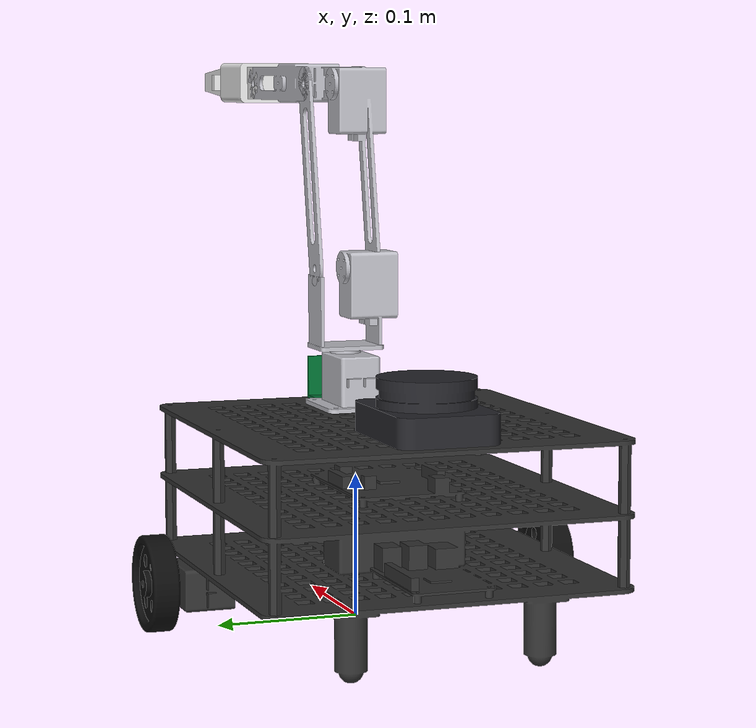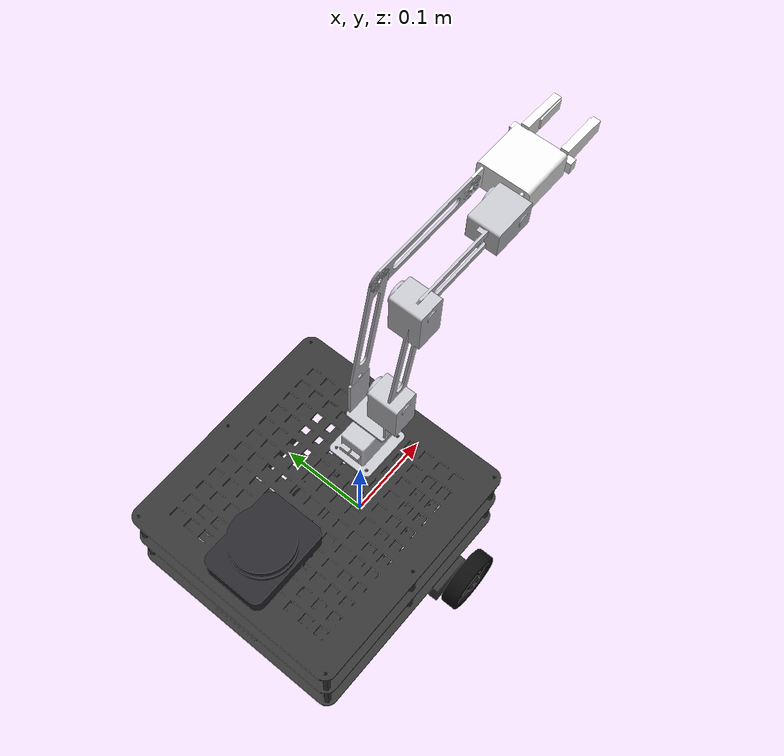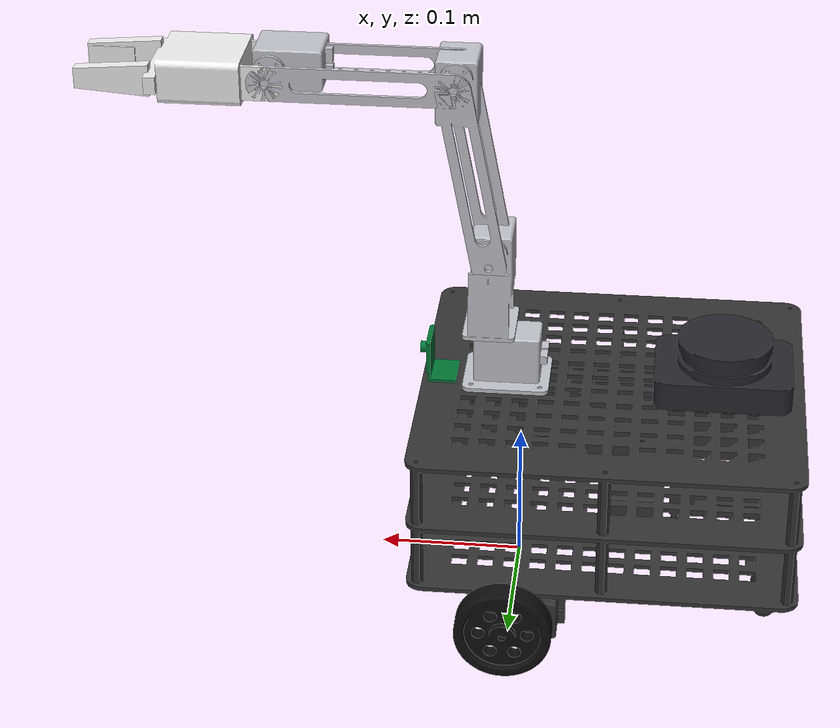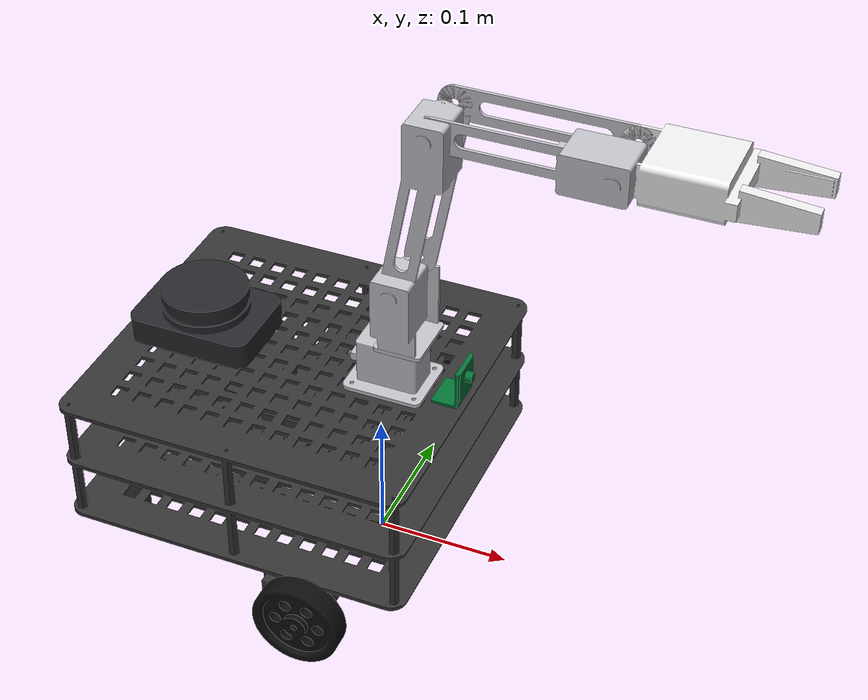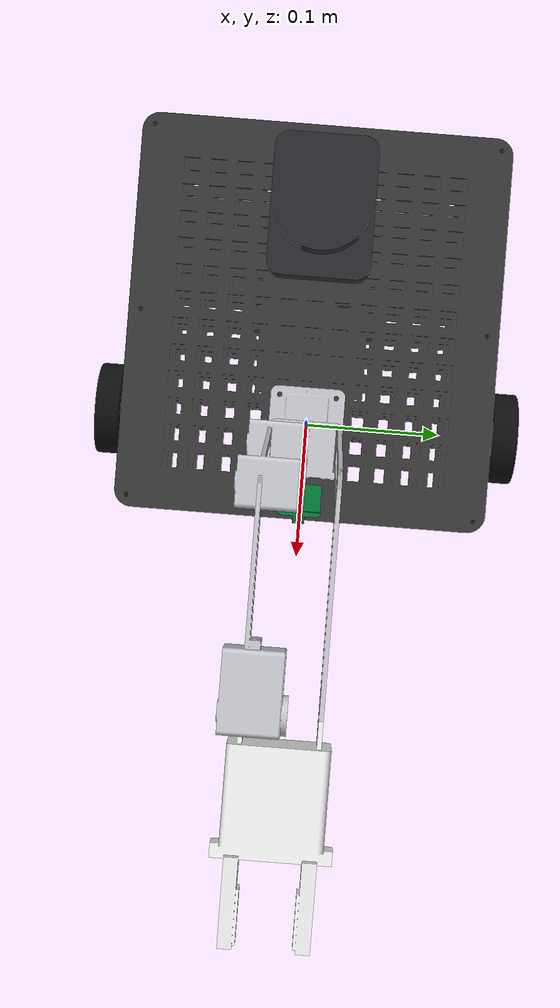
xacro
<?xml version="1.0"?>
<!-- TurtleBot3 Waffle Pi + OpenMANIPULATOR-X  |  generated by source/generate.py -->
<robot name="tb3_omx" xmlns:xacro="http://www.ros.org/wiki/xacro">
  <xacro:arg name="use_gazebo" default="false"/>
  <!-- ===== Parameters ===== -->
  <xacro:property name="j1_lower" value="-2.82743"/>
  <xacro:property name="j1_upper" value="2.82743"/>
  <xacro:property name="j2_lower" value="-1.79071"/>
  <xacro:property name="j2_upper" value="1.5708"/>
  <xacro:property name="j3_lower" value="-0.942478"/>
  <xacro:property name="j3_upper" value="1.3823"/>
  <xacro:property name="j4_lower" value="-1.79071"/>
  <xacro:property name="j4_upper" value="2.04204"/>
  <xacro:property name="grip_lower" value="-0.01"/>
  <xacro:property name="grip_upper" value="0.019"/>
  <xacro:property name="arm_effort" value="1"/>
  <xacro:property name="arm_velocity" value="4.8"/>
  <xacro:property name="wheel_radius" value="0.033"/>
  <xacro:property name="wheel_width" value="0.018"/>
  <xacro:property name="wheel_separation" value="0.288"/>
  <xacro:property name="mesh_path" value="package://tb3_omx_description/meshes"/>
  <material name="dark_grey"><color rgba="0.2 0.2 0.2 1"/></material>
  <material name="black"><color rgba="0.05 0.05 0.05 1"/></material>
  <material name="dark"><color rgba="0.15 0.15 0.17 1"/></material>
  <material name="green"><color rgba="0.0 0.45 0.2 1"/></material>
  <material name="aluminium"><color rgba="0.75 0.75 0.78 1"/></material>
  <material name="white"><color rgba="0.92 0.92 0.92 1"/></material>
  <link name="base_footprint"/>
  <link name="imu_link"/>
  <link name="end_effector_link"/>
  <link name="caster_back_left_link">
    <collision><geometry><sphere radius="0.008"/></geometry></collision>
    <inertial><mass value="0.005"/><inertia ixx="1e-6" ixy="0" ixz="0" iyy="1e-6" iyz="0" izz="1e-6"/></inertial>
  </link>
  <link name="caster_back_right_link">
    <collision><geometry><sphere radius="0.008"/></geometry></collision>
    <inertial><mass value="0.005"/><inertia ixx="1e-6" ixy="0" ixz="0" iyy="1e-6" iyz="0" izz="1e-6"/></inertial>
  </link>
  <link name="base_link">
    <visual>
      <origin xyz="0 0 0" rpy="0 0 0"/>
      <geometry><mesh filename="${mesh_path}/base_link.stl" scale="0.001 0.001 0.001"/></geometry>
      <material name="dark_grey"/>
    </visual>
    <collision>
      <origin xyz="-0.064 0 0.08275" rpy="0 0 0"/>
      <geometry><box size="0.266 0.25 0.107"/></geometry>
    </collision>
    <inertial>
      <origin xyz="-0.0664042 2.92852e-05 0.0707364" rpy="0 0 0"/>
      <mass value="1.6"/>
      <inertia ixx="1.228055e-02" ixy="5.002345e-06" ixz="-3.430103e-05" iyy="1.150243e-02" iyz="1.831477e-06" izz="1.847985e-02"/>
    </inertial>
  </link>
  <link name="wheel_left_link">
    <visual>
      <origin xyz="0 0 0" rpy="0 0 0"/>
      <geometry><mesh filename="${mesh_path}/wheel_left_link.stl" scale="0.001 0.001 0.001"/></geometry>
      <material name="black"/>
    </visual>
    <collision>
      <origin xyz="0 0 0" rpy="0 0 0"/>
      <geometry><cylinder radius="${wheel_radius}" length="${wheel_width}"/></geometry>
    </collision>
    <inertial>
      <origin xyz="0 0 0" rpy="0 0 0"/>
      <mass value="0.0285"/>
      <inertia ixx="9.462499e-06" ixy="9.164671e-22" ixz="-4.241032e-23" iyy="9.462499e-06" iyz="1.471676e-23" izz="1.780869e-05"/>
    </inertial>
  </link>
  <link name="wheel_right_link">
    <visual>
      <origin xyz="0 0 0" rpy="0 0 0"/>
      <geometry><mesh filename="${mesh_path}/wheel_right_link.stl" scale="0.001 0.001 0.001"/></geometry>
      <material name="black"/>
    </visual>
    <collision>
      <origin xyz="0 0 0" rpy="0 0 0"/>
      <geometry><cylinder radius="${wheel_radius}" length="${wheel_width}"/></geometry>
    </collision>
    <inertial>
      <origin xyz="0 0 0" rpy="0 0 0"/>
      <mass value="0.0285"/>
      <inertia ixx="9.462499e-06" ixy="9.164671e-22" ixz="-4.241032e-23" iyy="9.462499e-06" iyz="1.471676e-23" izz="1.780869e-05"/>
    </inertial>
  </link>
  <link name="base_scan">
    <visual>
      <origin xyz="0 0 0" rpy="0 0 0"/>
      <geometry><mesh filename="${mesh_path}/base_scan.stl" scale="0.001 0.001 0.001"/></geometry>
      <material name="dark"/>
    </visual>
    <collision>
      <origin xyz="0 0 0" rpy="0 0 0"/>
      <geometry><mesh filename="${mesh_path}/base_scan.stl" scale="0.001 0.001 0.001"/></geometry>
    </collision>
    <inertial>
      <origin xyz="0 0 -0.0135566" rpy="0 0 0"/>
      <mass value="0.114"/>
      <inertia ixx="5.347521e-05" ixy="3.513103e-22" ixz="1.231216e-21" iyy="8.029145e-05" iyz="8.523986e-23" izz="1.066196e-04"/>
    </inertial>
  </link>
  <link name="camera_link">
    <visual>
      <origin xyz="0 0 0" rpy="0 0 0"/>
      <geometry><mesh filename="${mesh_path}/camera_link.stl" scale="0.001 0.001 0.001"/></geometry>
      <material name="green"/>
    </visual>
    <collision>
      <origin xyz="0 0 0" rpy="0 0 0"/>
      <geometry><mesh filename="${mesh_path}/camera_link.stl" scale="0.001 0.001 0.001"/></geometry>
    </collision>
    <inertial>
      <origin xyz="-0.00427417 0 -0.00812358" rpy="0 0 0"/>
      <mass value="0.035"/>
      <inertia ixx="5.327454e-06" ixy="3.557610e-23" ixz="-1.229516e-06" iyy="4.431648e-06" iyz="3.727679e-23" izz="3.215425e-06"/>
    </inertial>
  </link>
  <link name="link1">
    <visual>
      <origin xyz="0 0 0" rpy="0 0 0"/>
      <geometry><mesh filename="${mesh_path}/link1.stl" scale="0.001 0.001 0.001"/></geometry>
      <material name="aluminium"/>
    </visual>
    <collision>
      <origin xyz="0 0 0" rpy="0 0 0"/>
      <geometry><mesh filename="${mesh_path}/link1.stl" scale="0.001 0.001 0.001"/></geometry>
    </collision>
    <inertial>
      <origin xyz="-1.95566e-05 0 -0.00263376" rpy="0 0 0"/>
      <mass value="0.0794"/>
      <inertia ixx="1.751067e-05" ixy="-3.916690e-23" ixz="-3.056049e-07" iyy="2.657503e-05" iyz="1.631697e-21" izz="2.300670e-05"/>
    </inertial>
  </link>
  <link name="link2">
    <visual>
      <origin xyz="0 0 0" rpy="0 0 0"/>
      <geometry><mesh filename="${mesh_path}/link2.stl" scale="0.001 0.001 0.001"/></geometry>
      <material name="aluminium"/>
    </visual>
    <collision>
      <origin xyz="0 0 0" rpy="0 0 0"/>
      <geometry><mesh filename="${mesh_path}/link2.stl" scale="0.001 0.001 0.001"/></geometry>
    </collision>
    <inertial>
      <origin xyz="0 -0.013286 0.0418309" rpy="0 0 0"/>
      <mass value="0.0985"/>
      <inertia ixx="5.143864e-05" ixy="9.209884e-22" ixz="4.937743e-21" iyy="3.929422e-05" iyz="7.022852e-06" izz="2.579167e-05"/>
    </inertial>
  </link>
  <link name="link3">
    <visual>
      <origin xyz="0 0 0" rpy="0 0 0"/>
      <geometry><mesh filename="${mesh_path}/link3.stl" scale="0.001 0.001 0.001"/></geometry>
      <material name="aluminium"/>
    </visual>
    <collision>
      <origin xyz="0 0 0" rpy="0 0 0"/>
      <geometry><mesh filename="${mesh_path}/link3.stl" scale="0.001 0.001 0.001"/></geometry>
    </collision>
    <inertial>
      <origin xyz="0.0214607 -0.0131109 0.104978" rpy="0 0 0"/>
      <mass value="0.1385"/>
      <inertia ixx="1.773126e-04" ixy="4.611043e-06" ixz="-2.607554e-05" iyy="1.611754e-04" iyz="1.946478e-05" izz="4.520910e-05"/>
    </inertial>
  </link>
  <link name="link4">
    <visual>
      <origin xyz="0 0 0" rpy="0 0 0"/>
      <geometry><mesh filename="${mesh_path}/link4.stl" scale="0.001 0.001 0.001"/></geometry>
      <material name="aluminium"/>
    </visual>
    <collision>
      <origin xyz="0 0 0" rpy="0 0 0"/>
      <geometry><mesh filename="${mesh_path}/link4.stl" scale="0.001 0.001 0.001"/></geometry>
    </collision>
    <inertial>
      <origin xyz="0.101677 -0.0132027 0" rpy="0 0 0"/>
      <mass value="0.1324"/>
      <inertia ixx="3.755913e-05" ixy="1.751570e-05" ixz="5.919502e-21" iyy="1.387335e-04" iyz="-1.665096e-21" izz="1.590702e-04"/>
    </inertial>
  </link>
  <link name="link5">
    <visual>
      <origin xyz="0 0 0" rpy="0 0 0"/>
      <geometry><mesh filename="${mesh_path}/link5.stl" scale="0.001 0.001 0.001"/></geometry>
      <material name="white"/>
    </visual>
    <collision>
      <origin xyz="0 0 0" rpy="0 0 0"/>
      <geometry><mesh filename="${mesh_path}/link5.stl" scale="0.001 0.001 0.001"/></geometry>
    </collision>
    <inertial>
      <origin xyz="0.0433089 0 0" rpy="0 0 0"/>
      <mass value="0.1438"/>
      <inertia ixx="4.872970e-05" ixy="-1.919941e-21" ixz="4.522255e-22" iyy="5.808539e-05" iyz="-2.995429e-23" izz="8.685506e-05"/>
    </inertial>
  </link>
  <link name="gripper_left_link">
    <visual>
      <origin xyz="0 0 0" rpy="0 0 0"/>
      <geometry><mesh filename="${mesh_path}/gripper_left_link.stl" scale="0.001 0.001 0.001"/></geometry>
      <material name="white"/>
    </visual>
    <collision>
      <origin xyz="0 0 0" rpy="0 0 0"/>
      <geometry><mesh filename="${mesh_path}/gripper_left_link.stl" scale="0.001 0.001 0.001"/></geometry>
    </collision>
    <inertial>
      <origin xyz="0.0178355 -0.000331395 0" rpy="0 0 0"/>
      <mass value="0.01"/>
      <inertia ixx="3.363243e-07" ixy="3.037077e-08" ixz="7.450239e-23" iyy="2.293338e-06" iyz="-5.650206e-24" izz="2.085787e-06"/>
    </inertial>
  </link>
  <link name="gripper_right_link">
    <visual>
      <origin xyz="0 0 0" rpy="0 0 0"/>
      <geometry><mesh filename="${mesh_path}/gripper_right_link.stl" scale="0.001 0.001 0.001"/></geometry>
      <material name="white"/>
    </visual>
    <collision>
      <origin xyz="0 0 0" rpy="0 0 0"/>
      <geometry><mesh filename="${mesh_path}/gripper_right_link.stl" scale="0.001 0.001 0.001"/></geometry>
    </collision>
    <inertial>
      <origin xyz="0.0178355 0.000331395 0" rpy="0 0 0"/>
      <mass value="0.01"/>
      <inertia ixx="3.363243e-07" ixy="-3.037077e-08" ixz="-9.017583e-23" iyy="2.293338e-06" iyz="-2.741828e-23" izz="2.085787e-06"/>
    </inertial>
  </link>
  <joint name="base_joint" type="fixed">
    <parent link="base_footprint"/>
    <child link="base_link"/>
    <origin xyz="0 0 0.01" rpy="0 0 0"/>
  </joint>
  <joint name="wheel_left_joint" type="continuous">
    <parent link="base_link"/>
    <child link="wheel_left_link"/>
    <origin xyz="0 ${wheel_separation/2} 0.023" rpy="-1.5708 0 0"/>
    <axis xyz="0 0 1"/>
    <dynamics damping="0.01" friction="0.0"/>
  </joint>
  <joint name="wheel_right_joint" type="continuous">
    <parent link="base_link"/>
    <child link="wheel_right_link"/>
    <origin xyz="0 -${wheel_separation/2} 0.023" rpy="-1.5708 0 0"/>
    <axis xyz="0 0 1"/>
    <dynamics damping="0.01" friction="0.0"/>
  </joint>
  <joint name="caster_back_left_joint" type="fixed">
    <parent link="base_link"/>
    <child link="caster_back_left_link"/>
    <origin xyz="-0.177 0.064 -0.002" rpy="0 0 0"/>
  </joint>
  <joint name="caster_back_right_joint" type="fixed">
    <parent link="base_link"/>
    <child link="caster_back_right_link"/>
    <origin xyz="-0.177 -0.064 -0.002" rpy="0 0 0"/>
  </joint>
  <joint name="imu_joint" type="fixed">
    <parent link="base_link"/>
    <child link="imu_link"/>
    <origin xyz="-0.064 0 0.09825" rpy="0 0 0"/>
  </joint>
  <joint name="scan_joint" type="fixed">
    <parent link="base_link"/>
    <child link="base_scan"/>
    <origin xyz="-0.14 0 0.16625" rpy="0 0 0"/>
  </joint>
  <joint name="camera_joint" type="fixed">
    <parent link="base_link"/>
    <child link="camera_link"/>
    <origin xyz="0.066 0 0.15625" rpy="0 0 0"/>
  </joint>
  <joint name="arm_mount_joint" type="fixed">
    <parent link="base_link"/>
    <child link="link1"/>
    <origin xyz="0.01 0 0.15625" rpy="0 0 0"/>
  </joint>
  <joint name="joint1" type="revolute">
    <parent link="link1"/>
    <child link="link2"/>
    <origin xyz="0.012 0 0.017" rpy="0 0 0"/>
    <axis xyz="0 0 1"/>
    <limit lower="${j1_lower}" upper="${j1_upper}" effort="${arm_effort}" velocity="${arm_velocity}"/>
    <dynamics damping="0.1" friction="0.0"/>
  </joint>
  <joint name="joint2" type="revolute">
    <parent link="link2"/>
    <child link="link3"/>
    <origin xyz="0 0 0.0595" rpy="0 0 0"/>
    <axis xyz="0 1 0"/>
    <limit lower="${j2_lower}" upper="${j2_upper}" effort="${arm_effort}" velocity="${arm_velocity}"/>
    <dynamics damping="0.1" friction="0.0"/>
  </joint>
  <joint name="joint3" type="revolute">
    <parent link="link3"/>
    <child link="link4"/>
    <origin xyz="0.024 0 0.128" rpy="0 0 0"/>
    <axis xyz="0 1 0"/>
    <limit lower="${j3_lower}" upper="${j3_upper}" effort="${arm_effort}" velocity="${arm_velocity}"/>
    <dynamics damping="0.1" friction="0.0"/>
  </joint>
  <joint name="joint4" type="revolute">
    <parent link="link4"/>
    <child link="link5"/>
    <origin xyz="0.124 0 0" rpy="0 0 0"/>
    <axis xyz="0 1 0"/>
    <limit lower="${j4_lower}" upper="${j4_upper}" effort="${arm_effort}" velocity="${arm_velocity}"/>
    <dynamics damping="0.1" friction="0.0"/>
  </joint>
  <joint name="gripper_left_joint" type="prismatic">
    <parent link="link5"/>
    <child link="gripper_left_link"/>
    <origin xyz="0.0817 0.021 0" rpy="0 0 0"/>
    <axis xyz="0 1 0"/>
    <limit lower="${grip_lower}" upper="${grip_upper}" effort="${arm_effort}" velocity="0.1"/>
    <dynamics damping="0.1" friction="0.0"/>
  </joint>
  <joint name="gripper_right_joint" type="prismatic">
    <parent link="link5"/>
    <child link="gripper_right_link"/>
    <origin xyz="0.0817 -0.021 0" rpy="0 0 0"/>
    <axis xyz="0 -1 0"/>
    <limit lower="${grip_lower}" upper="${grip_upper}" effort="${arm_effort}" velocity="0.1"/>
    <dynamics damping="0.1" friction="0.0"/>
    <mimic joint="gripper_left_joint" multiplier="1" offset="0"/>
  </joint>
  <joint name="end_effector_joint" type="fixed">
    <parent link="link5"/>
    <child link="end_effector_link"/>
    <origin xyz="0.126 0 0" rpy="0 0 0"/>
  </joint>
  <xacro:if value="$(arg use_gazebo)">
    <xacro:include filename="$(find tb3_omx_description)/urdf/tb3_omx.gazebo.xacro"/>
  </xacro:if>
</robot>
